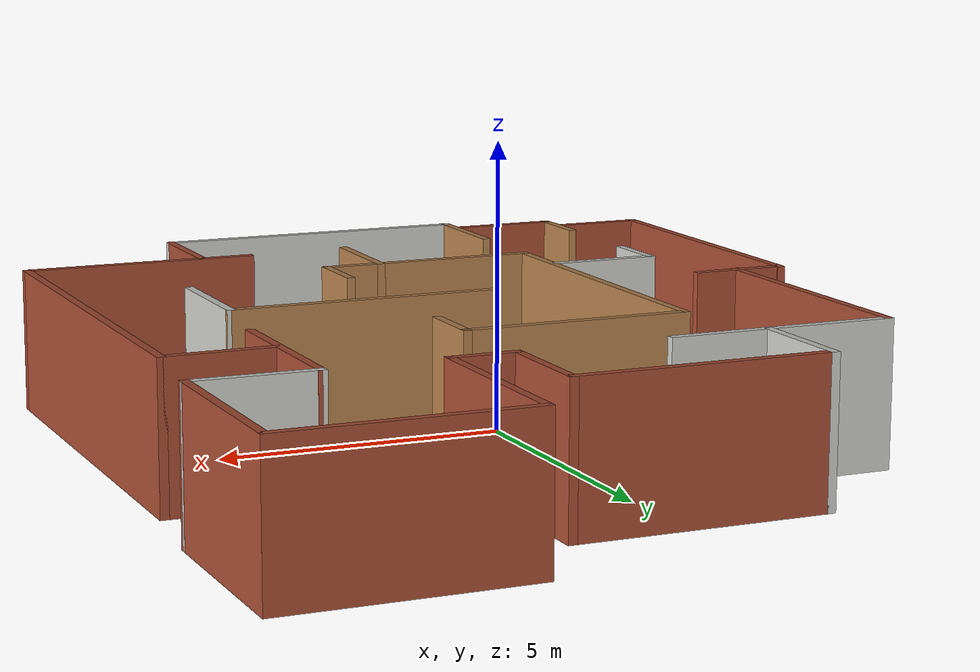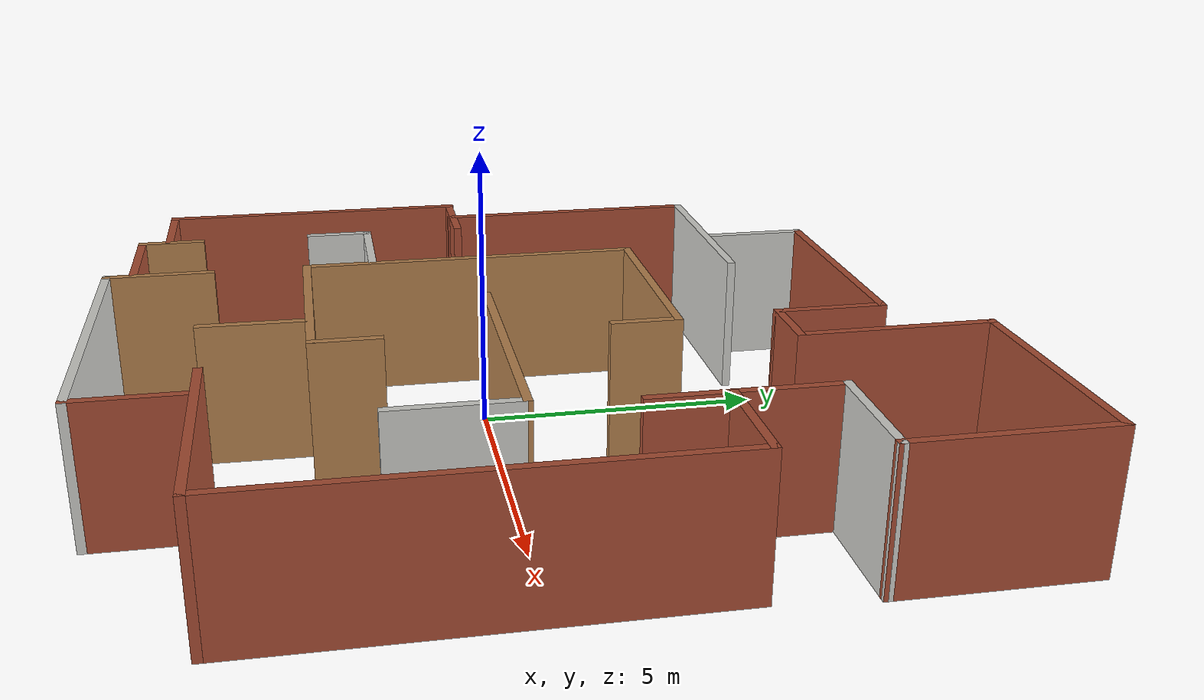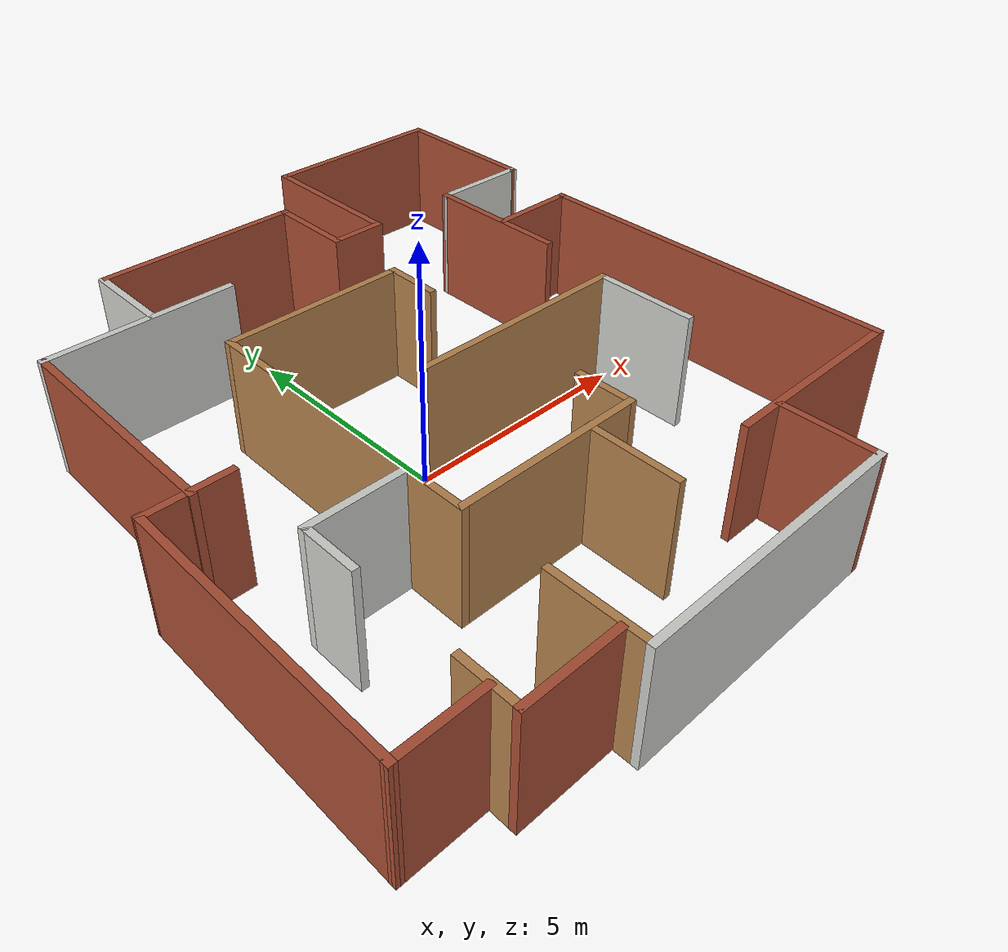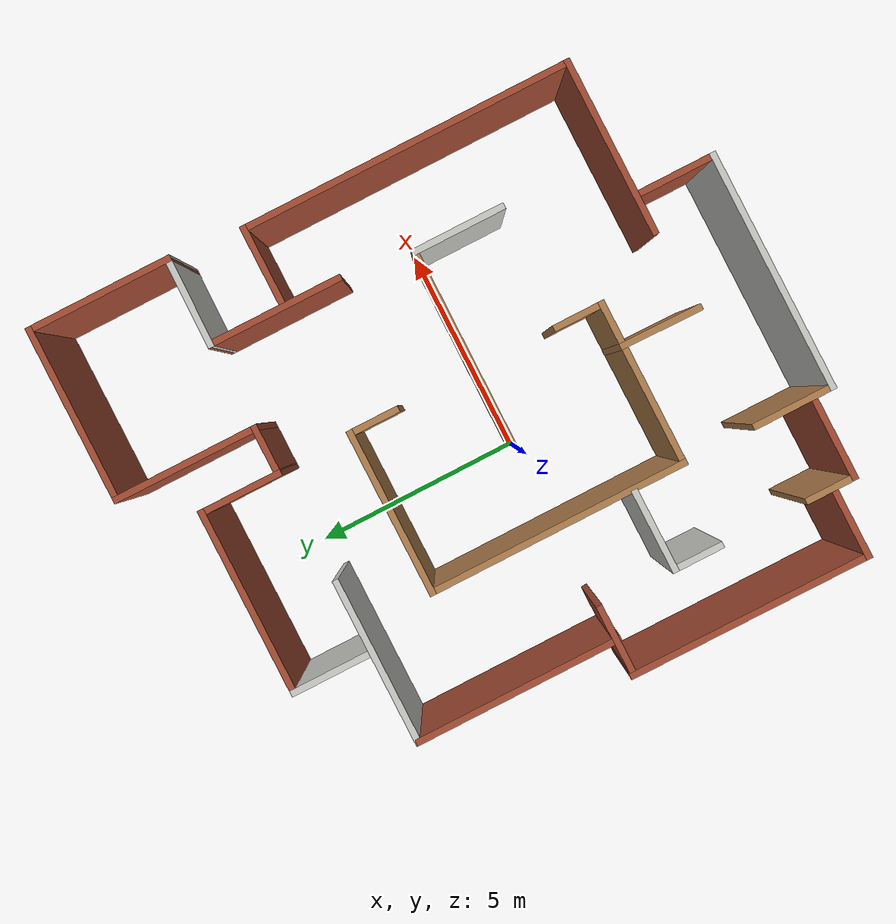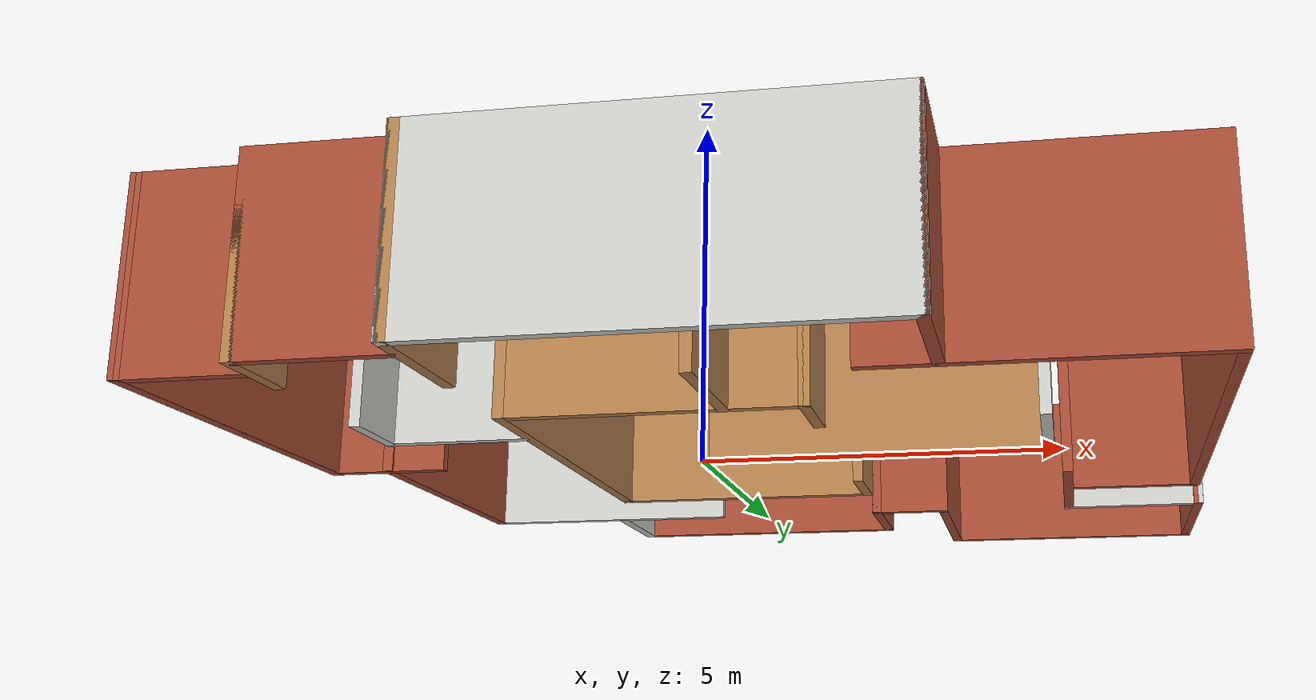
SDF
<?xml version='1.0'?>
<sdf version='1.6'>
  <model name='dat160_w3'>
    <pose frame=''>0.783732 0.772783 0 0 -0 0</pose>
    <link name='Wall_100'>
      <collision name='Wall_100_Collision'>
        <geometry>
          <box>
            <size>2.25 0.15 2.5</size>
          </box>
        </geometry>
        <pose frame=''>0 0 1.25 0 -0 0</pose>
      </collision>
      <visual name='Wall_100_Visual'>
        <pose frame=''>0 0 1.25 0 -0 0</pose>
        <geometry>
          <box>
            <size>2.25 0.15 2.5</size>
          </box>
        </geometry>
        <material>
          <script>
            <uri>file://media/materials/scripts/gazebo.material</uri>
            <name>Gazebo/CeilingTiled</name>
          </script>
          <ambient>1 1 1 1</ambient>
        </material>
        <meta>
          <layer>0</layer>
        </meta>
      </visual>
      <pose frame=''>3.9989 -1.79135 0 0 -0 -1.5708</pose>
    </link>
    <link name='Wall_102'>
      <collision name='Wall_102_Collision'>
        <geometry>
          <box>
            <size>1.97359 0.15 2.5</size>
          </box>
        </geometry>
        <pose frame=''>0 0 1.25 0 -0 0</pose>
      </collision>
      <visual name='Wall_102_Visual'>
        <pose frame=''>0 0 1.25 0 -0 0</pose>
        <geometry>
          <box>
            <size>1.97359 0.15 2.5</size>
          </box>
        </geometry>
        <material>
          <script>
            <uri>file://media/materials/scripts/gazebo.material</uri>
            <name>Gazebo/Wood</name>
          </script>
          <ambient>1 1 1 1</ambient>
        </material>
        <meta>
          <layer>0</layer>
        </meta>
      </visual>
      <pose frame=''>0.133556 -4.7191 0 0 -0 -1.58538</pose>
    </link>
    <link name='Wall_107'>
      <collision name='Wall_107_Collision'>
        <geometry>
          <box>
            <size>4.25 0.15 2.5</size>
          </box>
        </geometry>
        <pose frame=''>0 0 1.25 0 -0 0</pose>
      </collision>
      <visual name='Wall_107_Visual'>
        <pose frame=''>0 0 1.25 0 -0 0</pose>
        <geometry>
          <box>
            <size>4.25 0.15 2.5</size>
          </box>
        </geometry>
        <material>
          <script>
            <uri>file://media/materials/scripts/gazebo.material</uri>
            <name>Gazebo/Bricks</name>
          </script>
          <ambient>1 1 1 1</ambient>
        </material>
        <meta>
          <layer>0</layer>
        </meta>
      </visual>
      <pose frame=''>4.06989 -5.53935 0 0 -0 3.14159</pose>
    </link>
    <link name='Wall_11'>
      <collision name='Wall_11_Collision'>
        <geometry>
          <box>
            <size>4.77349 0.15 2.5</size>
          </box>
        </geometry>
        <pose frame=''>0 0 1.25 0 -0 0</pose>
      </collision>
      <visual name='Wall_11_Visual'>
        <pose frame=''>0 0 1.25 0 -0 0</pose>
        <geometry>
          <box>
            <size>4.77349 0.15 2.5</size>
          </box>
        </geometry>
        <material>
          <script>
            <uri>file://media/materials/scripts/gazebo.material</uri>
            <name>Gazebo/Wood</name>
          </script>
          <ambient>1 1 1 1</ambient>
        </material>
        <meta>
          <layer>0</layer>
        </meta>
      </visual>
      <pose frame=''>1.68718 -0.731562 0 0 -0 -0.004233</pose>
    </link>
    <link name='Wall_110'>
      <collision name='Wall_110_Collision'>
        <geometry>
          <box>
            <size>5.75 0.15 2.5</size>
          </box>
        </geometry>
        <pose frame=''>0 0 1.25 0 -0 0</pose>
      </collision>
      <visual name='Wall_110_Visual'>
        <pose frame=''>0 0 1.25 0 -0 0</pose>
        <geometry>
          <box>
            <size>5.75 0.15 2.5</size>
          </box>
        </geometry>
        <material>
          <script>
            <uri>file://media/materials/scripts/gazebo.material</uri>
            <name>Gazebo/CeilingTiled</name>
          </script>
          <ambient>1 1 1 1</ambient>
        </material>
        <meta>
          <layer>0</layer>
        </meta>
      </visual>
      <pose frame=''>0.100635 -7.41595 0 0 -0 0</pose>
    </link>
    <link name='Wall_111'>
      <collision name='Wall_111_Collision'>
        <geometry>
          <box>
            <size>2 0.15 2.5</size>
          </box>
        </geometry>
        <pose frame=''>0 0 1.25 0 -0 0</pose>
      </collision>
      <visual name='Wall_111_Visual'>
        <pose frame=''>0 0 1.25 0 -0 0</pose>
        <geometry>
          <box>
            <size>2 0.15 2.5</size>
          </box>
        </geometry>
        <material>
          <script>
            <uri>file://media/materials/scripts/gazebo.material</uri>
            <name>Gazebo/Bricks</name>
          </script>
          <ambient>1 1 1 1</ambient>
        </material>
        <meta>
          <layer>0</layer>
        </meta>
      </visual>
      <pose frame=''>2.90063 -6.49095 0 0 -0 1.5708</pose>
    </link>
    <link name='Wall_113'>
      <collision name='Wall_113_Collision'>
        <geometry>
          <box>
            <size>2 0.15 2.5</size>
          </box>
        </geometry>
        <pose frame=''>0 0 1.25 0 -0 0</pose>
      </collision>
      <visual name='Wall_113_Visual'>
        <pose frame=''>0 0 1.25 0 -0 0</pose>
        <geometry>
          <box>
            <size>2 0.15 2.5</size>
          </box>
        </geometry>
        <material>
          <script>
            <uri>file://media/materials/scripts/gazebo.material</uri>
            <name>Gazebo/Wood</name>
          </script>
          <ambient>1 1 1 1</ambient>
        </material>
        <meta>
          <layer>0</layer>
        </meta>
      </visual>
      <pose frame=''>-2.69936 -6.49095 0 0 -0 1.5708</pose>
    </link>
    <link name='Wall_115'>
      <collision name='Wall_115_Collision'>
        <geometry>
          <box>
            <size>2 0.15 2.5</size>
          </box>
        </geometry>
        <pose frame=''>0 0 1.25 0 -0 0</pose>
      </collision>
      <visual name='Wall_115_Visual'>
        <pose frame=''>0 0 1.25 0 -0 0</pose>
        <geometry>
          <box>
            <size>2 0.15 2.5</size>
          </box>
        </geometry>
        <material>
          <script>
            <uri>file://media/materials/scripts/gazebo.material</uri>
            <name>Gazebo/CeilingTiled</name>
          </script>
          <ambient>1 1 1 1</ambient>
        </material>
        <meta>
          <layer>0</layer>
        </meta>
      </visual>
      <pose frame=''>-3.72067 -2.59566 0 0 -0 3.14159</pose>
    </link>
    <link name='Wall_117'>
      <collision name='Wall_117_Collision'>
        <geometry>
          <box>
            <size>2 0.15 2.5</size>
          </box>
        </geometry>
        <pose frame=''>0 0 1.25 0 -0 0</pose>
      </collision>
      <visual name='Wall_117_Visual'>
        <pose frame=''>0 0 1.25 0 -0 0</pose>
        <geometry>
          <box>
            <size>2 0.15 2.5</size>
          </box>
        </geometry>
        <material>
          <script>
            <uri>file://media/materials/scripts/gazebo.material</uri>
            <name>Gazebo/Bricks</name>
          </script>
          <ambient>1 1 1 1</ambient>
        </material>
        <meta>
          <layer>0</layer>
        </meta>
      </visual>
      <pose frame=''>-3.72067 -6.94566 0 0 -0 0</pose>
    </link>
    <link name='Wall_119'>
      <collision name='Wall_119_Collision'>
        <geometry>
          <box>
            <size>1.25 0.15 2.5</size>
          </box>
        </geometry>
        <pose frame=''>0 0 1.25 0 -0 0</pose>
      </collision>
      <visual name='Wall_119_Visual'>
        <pose frame=''>0 0 1.25 0 -0 0</pose>
        <geometry>
          <box>
            <size>1.25 0.15 2.5</size>
          </box>
        </geometry>
        <material>
          <script>
            <uri>file://media/materials/scripts/gazebo.material</uri>
            <name>Gazebo/CeilingTiled</name>
          </script>
          <ambient>1 1 1 1</ambient>
        </material>
        <meta>
          <layer>0</layer>
        </meta>
      </visual>
      <pose frame=''>-4.64567 -3.14566 0 0 -0 -1.5708</pose>
    </link>
    <link name='Wall_124'>
      <collision name='Wall_124_Collision'>
        <geometry>
          <box>
            <size>1.25 0.15 2.5</size>
          </box>
        </geometry>
        <pose frame=''>0 0 1.25 0 -0 0</pose>
      </collision>
      <visual name='Wall_124_Visual'>
        <pose frame=''>0 0 1.25 0 -0 0</pose>
        <geometry>
          <box>
            <size>1.25 0.15 2.5</size>
          </box>
        </geometry>
        <material>
          <script>
            <uri>file://media/materials/scripts/gazebo.material</uri>
            <name>Gazebo/Wood</name>
          </script>
          <ambient>1 1 1 1</ambient>
        </material>
        <meta>
          <layer>0</layer>
        </meta>
      </visual>
      <pose frame=''>-4.64567 -6.39566 0 0 -0 1.5708</pose>
    </link>
    <link name='Wall_126'>
      <collision name='Wall_126_Collision'>
        <geometry>
          <box>
            <size>1.75 0.15 2.5</size>
          </box>
        </geometry>
        <pose frame=''>0 0 1.25 0 -0 0</pose>
      </collision>
      <visual name='Wall_126_Visual'>
        <pose frame=''>0 0 1.25 0 -0 0</pose>
        <geometry>
          <box>
            <size>1.75 0.15 2.5</size>
          </box>
        </geometry>
        <material>
          <script>
            <uri>file://media/materials/scripts/gazebo.material</uri>
            <name>Gazebo/Bricks</name>
          </script>
          <ambient>1 1 1 1</ambient>
        </material>
        <meta>
          <layer>0</layer>
        </meta>
      </visual>
      <pose frame=''>-5.49238 -6.43534 0 0 -0 3.14159</pose>
    </link>
    <link name='Wall_127'>
      <collision name='Wall_127_Collision'>
        <geometry>
          <box>
            <size>5.82831 0.15 2.5</size>
          </box>
        </geometry>
        <pose frame=''>0 0 1.25 0 -0 0</pose>
      </collision>
      <visual name='Wall_127_Visual'>
        <pose frame=''>0 0 1.25 0 -0 0</pose>
        <geometry>
          <box>
            <size>5.82831 0.15 2.5</size>
          </box>
        </geometry>
        <material>
          <script>
            <uri>file://media/materials/scripts/gazebo.material</uri>
            <name>Gazebo/Bricks</name>
          </script>
          <ambient>1 1 1 1</ambient>
        </material>
        <meta>
          <layer>0</layer>
        </meta>
      </visual>
      <pose frame=''>-6.28082 -3.59621 0 0 -0 1.56672</pose>
    </link>
    <link name='Wall_128'>
      <collision name='Wall_128_Collision'>
        <geometry>
          <box>
            <size>1.75 0.15 2.5</size>
          </box>
        </geometry>
        <pose frame=''>0 0 1.25 0 -0 0</pose>
      </collision>
      <visual name='Wall_128_Visual'>
        <pose frame=''>0 0 1.25 0 -0 0</pose>
        <geometry>
          <box>
            <size>1.75 0.15 2.5</size>
          </box>
        </geometry>
        <material>
          <script>
            <uri>file://media/materials/scripts/gazebo.material</uri>
            <name>Gazebo/Bricks</name>
          </script>
          <ambient>1 1 1 1</ambient>
        </material>
        <meta>
          <layer>0</layer>
        </meta>
      </visual>
      <pose frame=''>-5.46925 -0.780208 0 0 -0 0</pose>
    </link>
    <link name='Wall_130'>
      <collision name='Wall_130_Collision'>
        <geometry>
          <box>
            <size>4.96261 0.15 2.5</size>
          </box>
        </geometry>
        <pose frame=''>0 0 1.25 0 -0 0</pose>
      </collision>
      <visual name='Wall_130_Visual'>
        <pose frame=''>0 0 1.25 0 -0 0</pose>
        <geometry>
          <box>
            <size>4.96261 0.15 2.5</size>
          </box>
        </geometry>
        <material>
          <script>
            <uri>file://media/materials/scripts/gazebo.material</uri>
            <name>Gazebo/Bricks</name>
          </script>
          <ambient>1 1 1 1</ambient>
        </material>
        <meta>
          <layer>0</layer>
        </meta>
      </visual>
      <pose frame=''>-5.43256 1.5917 0 0 -0 1.5708</pose>
    </link>
    <link name='Wall_131'>
      <collision name='Wall_131_Collision'>
        <geometry>
          <box>
            <size>4 0.15 2.5</size>
          </box>
        </geometry>
        <pose frame=''>0 0 1.25 0 -0 0</pose>
      </collision>
      <visual name='Wall_131_Visual'>
        <pose frame=''>0 0 1.25 0 -0 0</pose>
        <geometry>
          <box>
            <size>4 0.15 2.5</size>
          </box>
        </geometry>
        <material>
          <script>
            <uri>file://media/materials/scripts/gazebo.material</uri>
            <name>Gazebo/CeilingTiled</name>
          </script>
          <ambient>1 1 1 1</ambient>
        </material>
        <meta>
          <layer>0</layer>
        </meta>
      </visual>
      <pose frame=''>-3.50757 4.02114 0 0 -0 0</pose>
    </link>
    <link name='Wall_133'>
      <collision name='Wall_133_Collision'>
        <geometry>
          <box>
            <size>2 0.15 2.5</size>
          </box>
        </geometry>
        <pose frame=''>0 0 1.25 0 -0 0</pose>
      </collision>
      <visual name='Wall_133_Visual'>
        <pose frame=''>0 0 1.25 0 -0 0</pose>
        <geometry>
          <box>
            <size>2 0.15 2.5</size>
          </box>
        </geometry>
        <material>
          <script>
            <uri>file://media/materials/scripts/gazebo.material</uri>
            <name>Gazebo/CeilingTiled</name>
          </script>
          <ambient>1 1 1 1</ambient>
        </material>
        <meta>
          <layer>0</layer>
        </meta>
      </visual>
      <pose frame=''>-3.25829 4.99095 0 0 -0 1.5708</pose>
    </link>
    <link name='Wall_135'>
      <collision name='Wall_135_Collision'>
        <geometry>
          <box>
            <size>4.5 0.15 2.5</size>
          </box>
        </geometry>
        <pose frame=''>0 0 1.25 0 -0 0</pose>
      </collision>
      <visual name='Wall_135_Visual'>
        <pose frame=''>0 0 1.25 0 -0 0</pose>
        <geometry>
          <box>
            <size>4.5 0.15 2.5</size>
          </box>
        </geometry>
        <material>
          <script>
            <uri>file://media/materials/scripts/gazebo.material</uri>
            <name>Gazebo/Bricks</name>
          </script>
          <ambient>1 1 1 1</ambient>
        </material>
        <meta>
          <layer>0</layer>
        </meta>
      </visual>
      <pose frame=''>-1.08329 5.91595 0 0 -0 0</pose>
    </link>
    <link name='Wall_136'>
      <collision name='Wall_136_Collision'>
        <geometry>
          <box>
            <size>2 0.15 2.5</size>
          </box>
        </geometry>
        <pose frame=''>0 0 1.25 0 -0 0</pose>
      </collision>
      <visual name='Wall_136_Visual'>
        <pose frame=''>0 0 1.25 0 -0 0</pose>
        <geometry>
          <box>
            <size>2 0.15 2.5</size>
          </box>
        </geometry>
        <material>
          <script>
            <uri>file://media/materials/scripts/gazebo.material</uri>
            <name>Gazebo/Bricks</name>
          </script>
          <ambient>1 1 1 1</ambient>
        </material>
        <meta>
          <layer>0</layer>
        </meta>
      </visual>
      <pose frame=''>1.09171 4.99095 0 0 -0 -1.5708</pose>
    </link>
    <link name='Wall_137'>
      <collision name='Wall_137_Collision'>
        <geometry>
          <box>
            <size>1.25 0.15 2.5</size>
          </box>
        </geometry>
        <pose frame=''>0 0 1.25 0 -0 0</pose>
      </collision>
      <visual name='Wall_137_Visual'>
        <pose frame=''>0 0 1.25 0 -0 0</pose>
        <geometry>
          <box>
            <size>1.25 0.15 2.5</size>
          </box>
        </geometry>
        <material>
          <script>
            <uri>file://media/materials/scripts/gazebo.material</uri>
            <name>Gazebo/Bricks</name>
          </script>
          <ambient>1 1 1 1</ambient>
        </material>
        <meta>
          <layer>0</layer>
        </meta>
      </visual>
      <pose frame=''>1.64171 4.06595 0 0 -0 0</pose>
    </link>
    <link name='Wall_138'>
      <collision name='Wall_138_Collision'>
        <geometry>
          <box>
            <size>3.5 0.15 2.5</size>
          </box>
        </geometry>
        <pose frame=''>0 0 1.25 0 -0 0</pose>
      </collision>
      <visual name='Wall_138_Visual'>
        <pose frame=''>0 0 1.25 0 -0 0</pose>
        <geometry>
          <box>
            <size>3.5 0.15 2.5</size>
          </box>
        </geometry>
        <material>
          <script>
            <uri>file://media/materials/scripts/gazebo.material</uri>
            <name>Gazebo/Bricks</name>
          </script>
          <ambient>1 1 1 1</ambient>
        </material>
        <meta>
          <layer>0</layer>
        </meta>
      </visual>
      <pose frame=''>2.19171 5.74095 0 0 -0 1.5708</pose>
    </link>
    <link name='Wall_139'>
      <collision name='Wall_139_Collision'>
        <geometry>
          <box>
            <size>4.25 0.15 2.5</size>
          </box>
        </geometry>
        <pose frame=''>0 0 1.25 0 -0 0</pose>
      </collision>
      <visual name='Wall_139_Visual'>
        <pose frame=''>0 0 1.25 0 -0 0</pose>
        <geometry>
          <box>
            <size>4.25 0.15 2.5</size>
          </box>
        </geometry>
        <material>
          <script>
            <uri>file://media/materials/scripts/gazebo.material</uri>
            <name>Gazebo/Bricks</name>
          </script>
          <ambient>1 1 1 1</ambient>
        </material>
        <meta>
          <layer>0</layer>
        </meta>
      </visual>
      <pose frame=''>4.24171 7.41595 0 0 -0 0</pose>
    </link>
    <link name='Wall_140'>
      <collision name='Wall_140_Collision'>
        <geometry>
          <box>
            <size>3.5 0.15 2.5</size>
          </box>
        </geometry>
        <pose frame=''>0 0 1.25 0 -0 0</pose>
      </collision>
      <visual name='Wall_140_Visual'>
        <pose frame=''>0 0 1.25 0 -0 0</pose>
        <geometry>
          <box>
            <size>3.5 0.15 2.5</size>
          </box>
        </geometry>
        <material>
          <script>
            <uri>file://media/materials/scripts/gazebo.material</uri>
            <name>Gazebo/Bricks</name>
          </script>
          <ambient>1 1 1 1</ambient>
        </material>
        <meta>
          <layer>0</layer>
        </meta>
      </visual>
      <pose frame=''>6.29171 5.74095 0 0 -0 -1.5708</pose>
    </link>
    <link name='Wall_141'>
      <collision name='Wall_141_Collision'>
        <geometry>
          <box>
            <size>2.20197 0.15 2.5</size>
          </box>
        </geometry>
        <pose frame=''>0 0 1.25 0 -0 0</pose>
      </collision>
      <visual name='Wall_141_Visual'>
        <pose frame=''>0 0 1.25 0 -0 0</pose>
        <geometry>
          <box>
            <size>2.20197 0.15 2.5</size>
          </box>
        </geometry>
        <material>
          <script>
            <uri>file://media/materials/scripts/gazebo.material</uri>
            <name>Gazebo/CeilingTiled</name>
          </script>
          <ambient>1 1 1 1</ambient>
        </material>
        <meta>
          <layer>0</layer>
        </meta>
      </visual>
      <pose frame=''>5.26581 4.07941 0 0 -0 3.12848</pose>
    </link>
    <link name='Wall_3'>
      <collision name='Wall_3_Collision'>
        <geometry>
          <box>
            <size>4 0.15 2.5</size>
          </box>
        </geometry>
        <pose frame=''>0 0 1.25 0 -0 0</pose>
      </collision>
      <visual name='Wall_3_Visual'>
        <pose frame=''>0 0 1.25 0 -0 0</pose>
        <geometry>
          <box>
            <size>4 0.15 2.5</size>
          </box>
        </geometry>
        <material>
          <script>
            <uri>file://media/materials/scripts/gazebo.material</uri>
            <name>Gazebo/Wood</name>
          </script>
          <ambient>1 1 1 1</ambient>
        </material>
        <meta>
          <layer>0</layer>
        </meta>
      </visual>
      <pose frame=''>-0.774365 2.28405 0 0 -0 0</pose>
    </link>
    <link name='Wall_5'>
      <collision name='Wall_5_Collision'>
        <geometry>
          <box>
            <size>6.25 0.15 2.5</size>
          </box>
        </geometry>
        <pose frame=''>0 0 1.25 0 -0 0</pose>
      </collision>
      <visual name='Wall_5_Visual'>
        <pose frame=''>0 0 1.25 0 -0 0</pose>
        <geometry>
          <box>
            <size>6.25 0.15 2.5</size>
          </box>
        </geometry>
        <material>
          <script>
            <uri>file://media/materials/scripts/gazebo.material</uri>
            <name>Gazebo/Wood</name>
          </script>
          <ambient>1 1 1 1</ambient>
        </material>
        <meta>
          <layer>0</layer>
        </meta>
      </visual>
      <pose frame=''>-2.69936 -0.765954 0 0 -0 -1.5708</pose>
    </link>
    <link name='Wall_6'>
      <collision name='Wall_6_Collision'>
        <geometry>
          <box>
            <size>4 0.15 2.5</size>
          </box>
        </geometry>
        <pose frame=''>0 0 1.25 0 -0 0</pose>
      </collision>
      <visual name='Wall_6_Visual'>
        <pose frame=''>0 0 1.25 0 -0 0</pose>
        <geometry>
          <box>
            <size>4 0.15 2.5</size>
          </box>
        </geometry>
        <material>
          <script>
            <uri>file://media/materials/scripts/gazebo.material</uri>
            <name>Gazebo/Wood</name>
          </script>
          <ambient>1 1 1 1</ambient>
        </material>
        <meta>
          <layer>0</layer>
        </meta>
      </visual>
      <pose frame=''>-0.774365 -3.81595 0 0 -0 0</pose>
    </link>
    <link name='Wall_7'>
      <collision name='Wall_7_Collision'>
        <geometry>
          <box>
            <size>1.25 0.15 2.5</size>
          </box>
        </geometry>
        <pose frame=''>0 0 1.25 0 -0 0</pose>
      </collision>
      <visual name='Wall_7_Visual'>
        <pose frame=''>0 0 1.25 0 -0 0</pose>
        <geometry>
          <box>
            <size>1.25 0.15 2.5</size>
          </box>
        </geometry>
        <material>
          <script>
            <uri>file://media/materials/scripts/gazebo.material</uri>
            <name>Gazebo/Wood</name>
          </script>
          <ambient>1 1 1 1</ambient>
        </material>
        <meta>
          <layer>0</layer>
        </meta>
      </visual>
      <pose frame=''>1.15064 -3.26595 0 0 -0 1.5708</pose>
    </link>
    <link name='Wall_9'>
      <collision name='Wall_9_Collision'>
        <geometry>
          <box>
            <size>1.25 0.15 2.5</size>
          </box>
        </geometry>
        <pose frame=''>0 0 1.25 0 -0 0</pose>
      </collision>
      <visual name='Wall_9_Visual'>
        <pose frame=''>0 0 1.25 0 -0 0</pose>
        <geometry>
          <box>
            <size>1.25 0.15 2.5</size>
          </box>
        </geometry>
        <material>
          <script>
            <uri>file://media/materials/scripts/gazebo.material</uri>
            <name>Gazebo/Wood</name>
          </script>
          <ambient>1 1 1 1</ambient>
        </material>
        <meta>
          <layer>0</layer>
        </meta>
      </visual>
      <pose frame=''>1.15064 1.73405 0 0 -0 -1.5708</pose>
    </link>
    <link name='Wall_95'>
      <collision name='Wall_95_Collision'>
        <geometry>
          <box>
            <size>3.25 0.15 2.5</size>
          </box>
        </geometry>
        <pose frame=''>0 0 1.25 0 -0 0</pose>
      </collision>
      <visual name='Wall_95_Visual'>
        <pose frame=''>0 0 1.25 0 -0 0</pose>
        <geometry>
          <box>
            <size>3.25 0.15 2.5</size>
          </box>
        </geometry>
        <material>
          <script>
            <uri>file://media/materials/scripts/gazebo.material</uri>
            <name>Gazebo/Bricks</name>
          </script>
          <ambient>1 1 1 1</ambient>
        </material>
        <meta>
          <layer>0</layer>
        </meta>
      </visual>
      <pose frame=''>4.23992 2.54286 0 0 -0 -1.5708</pose>
    </link>
    <link name='Wall_97'>
      <collision name='Wall_97_Collision'>
        <geometry>
          <box>
            <size>2 0.15 2.5</size>
          </box>
        </geometry>
        <pose frame=''>0 0 1.25 0 -0 0</pose>
      </collision>
      <visual name='Wall_97_Visual'>
        <pose frame=''>0 0 1.25 0 -0 0</pose>
        <geometry>
          <box>
            <size>2 0.15 2.5</size>
          </box>
        </geometry>
        <material>
          <script>
            <uri>file://media/materials/scripts/gazebo.material</uri>
            <name>Gazebo/Bricks</name>
          </script>
          <ambient>1 1 1 1</ambient>
        </material>
        <meta>
          <layer>0</layer>
        </meta>
      </visual>
      <pose frame=''>5.19489 2.31065 0 0 -0 0</pose>
    </link>
    <link name='Wall_98'>
      <collision name='Wall_98_Collision'>
        <geometry>
          <box>
            <size>8 0.15 2.5</size>
          </box>
        </geometry>
        <pose frame=''>0 0 1.25 0 -0 0</pose>
      </collision>
      <visual name='Wall_98_Visual'>
        <pose frame=''>0 0 1.25 0 -0 0</pose>
        <geometry>
          <box>
            <size>8 0.15 2.5</size>
          </box>
        </geometry>
        <material>
          <script>
            <uri>file://media/materials/scripts/gazebo.material</uri>
            <name>Gazebo/Bricks</name>
          </script>
          <ambient>1 1 1 1</ambient>
        </material>
        <meta>
          <layer>0</layer>
        </meta>
      </visual>
      <pose frame=''>6.11989 -1.61435 0 0 -0 -1.5708</pose>
    </link>
    <static>1</static>
  </model>
</sdf>
